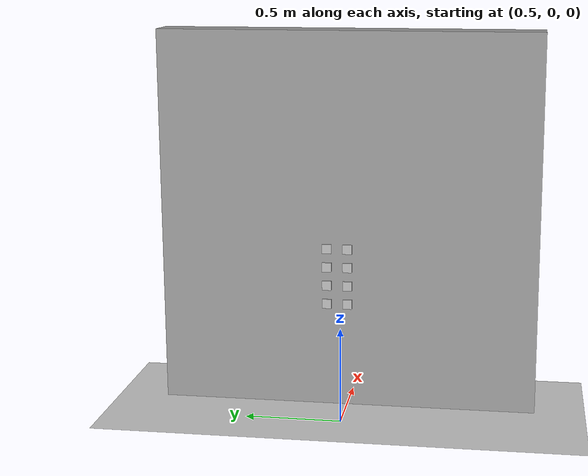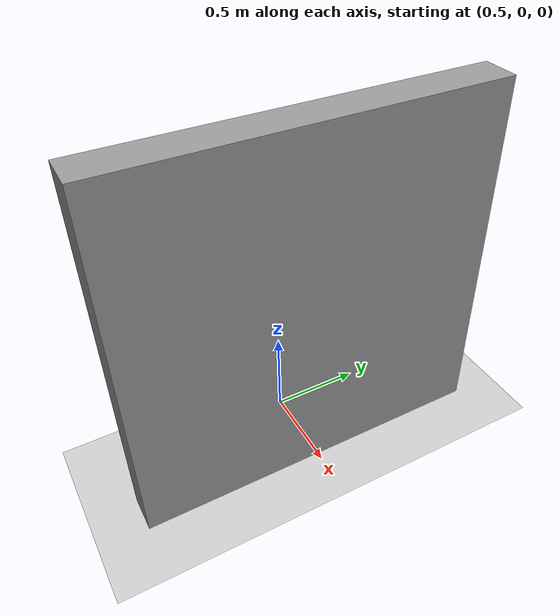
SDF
<?xml version="1.0"?>
<sdf version="1.6">
  <world name="elevator_world">

    <!-- Physics -->
    <physics type="ode">
      <max_step_size>0.001</max_step_size>
      <real_time_factor>1</real_time_factor>
      <real_time_update_rate>1000</real_time_update_rate>
    </physics>

    <!-- 기본 환경 -->
    <include><uri>model://sun</uri></include>
    <include><uri>model://ground_plane</uri></include>

    <!-- Elevator Wall -->
    <model name="elevator_walls">
      <static>true</static>
      <pose>0.855 0 1 0 0 1.5708</pose>
      <link name="walls_link">
        <collision name="collision">
          <geometry><box><size>2 0.2 2</size></box></geometry>
        </collision>
        <visual name="visual">
          <geometry><box><size>2 0.2 2</size></box></geometry>
          <material>
            <script>
              <uri>file:///home/sunbi/ros/install/ur_simulation_gazebo/share/ur_simulation_gazebo/materials/scripts</uri>
              <uri>file:///home/sunbi/ros/install/ur_simulation_gazebo/share/ur_simulation_gazebo/materials/textures</uri>
              <name>Gazebo/Gray</name>
              <name>elevator/wall</name>
            </script>
          </material>
        </visual>
      </link>
    </model>

    <!-- size = 5cm x 5cm, depth = 1cm -->
    <!-- pose: x=0.75 y={0.11 or 0} z varies -->

    <!-- Button 1 -->
    <model name="button1">
      <static>true</static>
      <link name="button_link">
        <pose>0.75 0.11 0.56 0 0 1.5708</pose>
        <collision name="collision"><geometry><box><size>0.05 0.01 0.05</size></box></geometry></collision>
        <visual name="visual">
          <geometry><box><size>0.05 0.01 0.05</size></box></geometry>
          <material><script>
            <uri>file:///home/sunbi/ros/install/ur_simulation_gazebo/share/ur_simulation_gazebo/materials/scripts</uri>
            <uri>file:///home/sunbi/ros/install/ur_simulation_gazebo/share/ur_simulation_gazebo/materials/textures</uri>
            <name>elevator/button_1</name>
          </script></material>
        </visual>
      </link>
      <plugin name="plugin_btn1" filename="libelevator_button_plugin.so"><ros><namespace>/elevator/button1</namespace></ros></plugin>
    </model>

    <!-- Button 2 -->
    <model name="button2">
      <static>true</static>
      <link name="button_link">
        <pose>0.75 0 0.56 0 0 1.5708</pose>
        <collision name="collision"><geometry><box><size>0.05 0.01 0.05</size></box></geometry></collision>
        <visual name="visual">
          <geometry><box><size>0.05 0.01 0.05</size></box></geometry>
          <material><script>
            <uri>file:///home/sunbi/ros/install/ur_simulation_gazebo/share/ur_simulation_gazebo/materials/scripts</uri>
            <uri>file:///home/sunbi/ros/install/ur_simulation_gazebo/share/ur_simulation_gazebo/materials/textures</uri>
            <name>elevator/button_2</name>
          </script></material>
        </visual>
      </link>
      <plugin name="plugin_btn2" filename="libelevator_button_plugin.so"><ros><namespace>/elevator/button2</namespace></ros></plugin>
    </model>

    <!-- Button 3 -->
    <model name="button3">
      <static>true</static>
      <link name="button_link">
        <pose>0.75 0.11 0.66 0 0 1.5708</pose>
        <collision name="collision"><geometry><box><size>0.05 0.01 0.05</size></box></geometry></collision>
        <visual name="visual">
          <geometry><box><size>0.05 0.01 0.05</size></box></geometry>
          <material><script>
            <uri>file:///home/sunbi/ros/install/ur_simulation_gazebo/share/ur_simulation_gazebo/materials/scripts</uri>
            <uri>file:///home/sunbi/ros/install/ur_simulation_gazebo/share/ur_simulation_gazebo/materials/textures</uri>
            <name>elevator/button_3</name>
          </script></material>
        </visual>
      </link>
      <plugin name="plugin_btn3" filename="libelevator_button_plugin.so"><ros><namespace>/elevator/button3</namespace></ros></plugin>
    </model>

    <!-- Button 4 -->
    <model name="button4">
      <static>true</static>
      <link name="button_link">
        <pose>0.75 0 0.66 0 0 1.5708</pose>
        <collision name="collision"><geometry><box><size>0.05 0.01 0.05</size></box></geometry></collision>
        <visual name="visual">
          <geometry><box><size>0.05 0.01 0.05</size></box></geometry>
          <material><script>
            <uri>file:///home/sunbi/ros/install/ur_simulation_gazebo/share/ur_simulation_gazebo/materials/scripts</uri>
            <uri>file:///home/sunbi/ros/install/ur_simulation_gazebo/share/ur_simulation_gazebo/materials/textures</uri>
            <name>elevator/button_4</name>
          </script></material>
        </visual>
      </link>
      <plugin name="plugin_btn4" filename="libelevator_button_plugin.so"><ros><namespace>/elevator/button4</namespace></ros></plugin>
    </model>

    <!-- Button 5 -->
    <model name="button5">
      <static>true</static>
      <link name="button_link">
        <pose>0.75 0.11 0.76 0 0 1.5708</pose>
        <collision name="collision"><geometry><box><size>0.05 0.01 0.05</size></box></geometry></collision>
        <visual name="visual">
          <geometry><box><size>0.05 0.01 0.05</size></box></geometry>
          <material><script>
            <uri>file:///home/sunbi/ros/install/ur_simulation_gazebo/share/ur_simulation_gazebo/materials/scripts</uri>
            <uri>file:///home/sunbi/ros/install/ur_simulation_gazebo/share/ur_simulation_gazebo/materials/textures</uri>
            <name>elevator/button_5</name>
          </script></material>
        </visual>
      </link>
      <plugin name="plugin_btn5" filename="libelevator_button_plugin.so"><ros><namespace>/elevator/button5</namespace></ros></plugin>
    </model>

    <!-- Button 6 -->
    <model name="button6">
      <static>true</static>
      <link name="button_link">
        <pose>0.75 0 0.76 0 0 1.5708</pose>
        <collision name="collision"><geometry><box><size>0.05 0.01 0.05</size></box></geometry></collision>
        <visual name="visual">
          <geometry><box><size>0.05 0.01 0.05</size></box></geometry>
          <material><script>
            <uri>file:///home/sunbi/ros/install/ur_simulation_gazebo/share/ur_simulation_gazebo/materials/scripts</uri>
            <uri>file:///home/sunbi/ros/install/ur_simulation_gazebo/share/ur_simulation_gazebo/materials/textures</uri>
            <name>elevator/button_6</name>
          </script></material>
        </visual>
      </link>
      <plugin name="plugin_btn6" filename="libelevator_button_plugin.so"><ros><namespace>/elevator/button6</namespace></ros></plugin>
    </model>

    <!-- Button O -->
    <model name="buttonO">
      <static>true</static>
      <link name="button_link">
        <pose>0.75 0.11 0.86 0 0 1.5708</pose>
        <collision name="collision"><geometry><box><size>0.05 0.01 0.05</size></box></geometry></collision>
        <visual name="visual">
          <geometry><box><size>0.05 0.01 0.05</size></box></geometry>
          <material><script>
            <uri>file:///home/sunbi/ros/install/ur_simulation_gazebo/share/ur_simulation_gazebo/materials/scripts</uri>
            <uri>file:///home/sunbi/ros/install/ur_simulation_gazebo/share/ur_simulation_gazebo/materials/textures</uri>
            <name>elevator/button_o</name>
          </script></material>
        </visual>
      </link>
      <plugin name="plugin_btnO" filename="libelevator_button_plugin.so"><ros><namespace>/elevator/buttonO</namespace></ros></plugin>
    </model>

    <!-- Button C -->
    <model name="buttonC">
      <static>true</static>
      <link name="button_link">
        <pose>0.75 0 0.86 0 0 1.5708</pose>
        <collision name="collision"><geometry><box><size>0.05 0.01 0.05</size></box></geometry></collision>
        <visual name="visual">
          <geometry><box><size>0.05 0.01 0.05</size></box></geometry>
          <material><script>
            <uri>file:///home/sunbi/ros/install/ur_simulation_gazebo/share/ur_simulation_gazebo/materials/scripts</uri>
            <uri>file:///home/sunbi/ros/install/ur_simulation_gazebo/share/ur_simulation_gazebo/materials/textures</uri>
            <name>elevator/button_c</name>
          </script></material>
        </visual>
      </link>
      <plugin name="plugin_btnC" filename="libelevator_button_plugin.so"><ros><namespace>/elevator/buttonC</namespace></ros></plugin>
    </model>

  </world>
</sdf>
